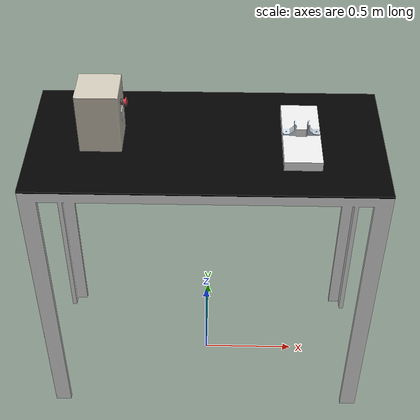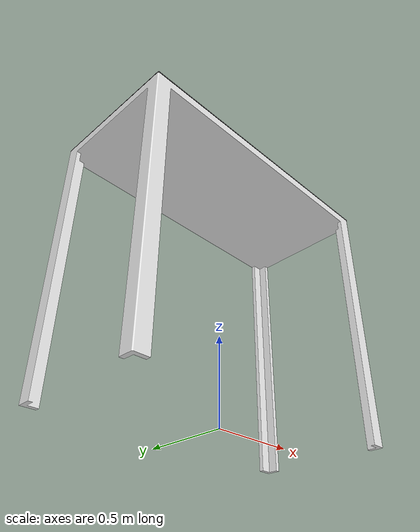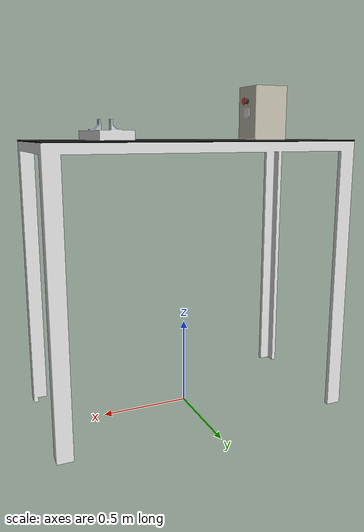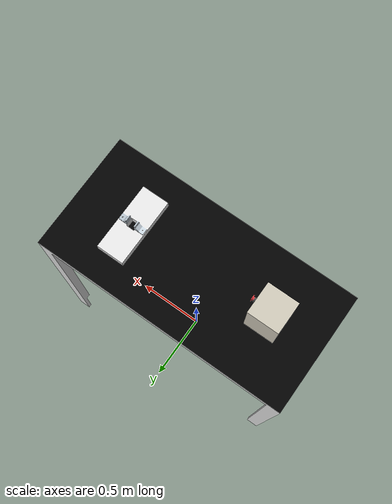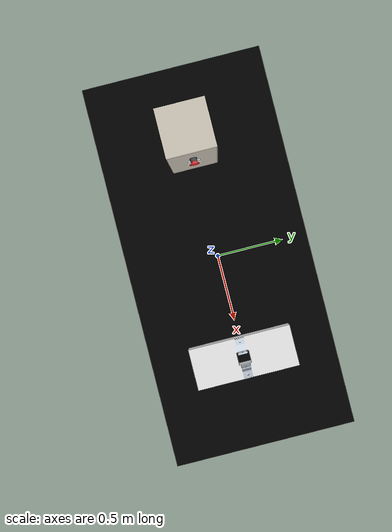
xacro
<?xml version="1.0"?>
<robot name="world_challenger" xmlns:xacro="http://ros.org/wiki/xacro">

<!--Base link-->
  <link name="world">
  </link>

<xacro:include filename="$(find manipulator_description)/urdf/table_box.xacro"/>
<xacro:include filename="$(find manipulator_description)/urdf/base.xacro"/>

</robot>

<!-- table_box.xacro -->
<robot name="table_challenger" xmlns:xacro="http://ros.org/wiki/xacro">

<!--Table_box-->
  <link name="table_box">
    <visual>
      <origin rpy="0 0 0" xyz="0 0 0"/>
      <geometry>
        <mesh filename="package://manipulator_description/meshes/table.dae"/>
      </geometry>
    </visual>
    <collision>
      <origin rpy="0 0 0" xyz="0 0 0"/>
      <geometry>
        <mesh filename="package://manipulator_description/meshes/table.stl"/>
      </geometry>
    </collision>
    <inertial>
      <origin rpy="0 0 0" xyz="0 0 0"/>
      <mass value="85.98546073"/>
      <inertia ixx="1.65745940e+1" ixy="1.89812718e-3" ixz="1.18207006e+0" iyx="1.89812718e-3" iyy="3.80854663e+1" iyz="1.49789551e-3" izx="1.18207006e+0" izy="1.49789551e-3" izz="3.24742396e+1"/>
    </inertial>
    </link>
    <joint name="table_to_world" type="fixed">
      <parent link="world"/>
      <child link="table_box"/>
      <origin rpy="0 0 0" xyz="0 0 1.50"/>
    </joint>
</robot>

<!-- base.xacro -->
<robot name="manipulador_base" xmlns:xacro="http://ros.org/wiki/xacro">

<!--Base_to_manipulator-->
  <link name="base_to_manipulator">
    <visual>
      <origin rpy="0 0 0" xyz="0 0 0"/>
      <geometry>
        <mesh filename="package://manipulator_description/meshes/basem.dae"/>
      </geometry>
    </visual>
    <collision>
      <origin rpy="0 0 0" xyz="0 0 0"/>
      <geometry>
        <mesh filename="package://manipulator_description/meshes/basem.stl"/>
      </geometry>
    </collision>
    <inertial>
      <origin rpy="0 0 0" xyz="0 0 0"/>
      <mass value="2.86661792"/>
      <inertia ixx="8.72078676e-3" ixy="-9.55785583e-9" ixz="0" iyx="-9.55785583e-9" iyy="4.66430350e-2" iyz="0" izx="0" izy="-0" izz="5.35109282e-2"/>
    </inertial>
    </link>
    <joint name="base_to_world1" type="fixed">
      <parent link="world"/>
      <child link="base_to_manipulator"/>
      <origin rpy="0 0 1.57" xyz="0.45 0 1.56"/>
    </joint>

</robot>
